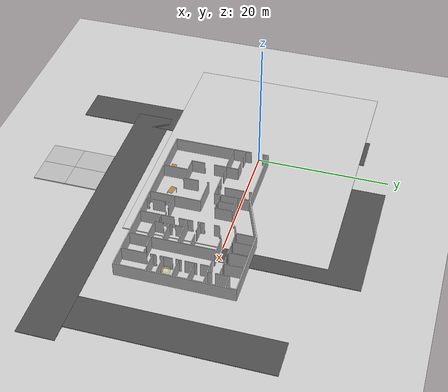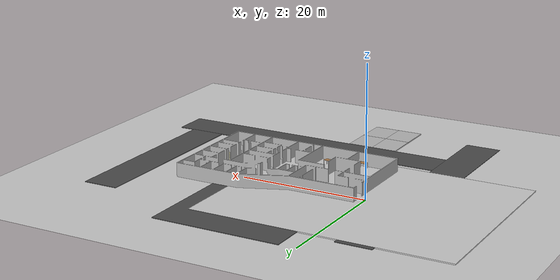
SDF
<sdf version="1.6">
 <world name="default">
  <light name="sun" type="directional">
   <pose>0 0 10 0 -0 0</pose>
   <diffuse>0.8 0.8 0.8 1</diffuse>
   <specular>0.1 0.1 0.1 1</specular>
   <attenuation>
    <range>1000</range>
    <constant>0.9</constant>
    <linear>0.01</linear>
    <quadratic>0.001</quadratic>
   </attenuation>
   <direction>-0.5 0.5 -1</direction>
  </light>
  <model name="ground_plane">
   <static>1</static>
   <link name="link">
    <collision name="collision">
     <geometry><plane><normal>0 0 1</normal><size>100 100</size></plane></geometry>
     <surface><friction><ode><mu>100</mu><mu2>50</mu2></ode></friction></surface>
    </collision>
    <visual name="visual">
     <cast_shadows>0</cast_shadows>
     <geometry><plane><normal>0 0 1</normal><size>100 100</size></plane></geometry>
     <material>
      <script><uri>file://media/materials/scripts/gazebo.material</uri><name>Gazebo/Grey</name></script>
     </material>
    </visual>
   </link>
  </model>
  <gravity>0 0 -9.8</gravity>
  <magnetic_field>6e-06 2.3e-05 -4.2e-05</magnetic_field>
  <atmosphere type="adiabatic"/>
  <physics name="default_physics" default="0" type="ode">
   <max_step_size>0.001</max_step_size>
   <real_time_factor>1</real_time_factor>
   <real_time_update_rate>1000</real_time_update_rate>
  </physics>
  <scene><ambient>0.6 0.6 0.6 1</ambient><background>0.8 0.79 0.77 1</background><shadows>1</shadows></scene>
  <spherical_coordinates>
   <surface_model>EARTH_WGS84</surface_model>
   <latitude_deg>0</latitude_deg>
   <longitude_deg>0</longitude_deg>
   <elevation>0</elevation>
   <heading_deg>0</heading_deg>
  </spherical_coordinates>
  <model name="my_building">
   <static>1</static>
   <link name="building">
    <collision name="collision">
     <geometry>
      <mesh><uri>model://ed_pmov/worlds/models/building/building.dae</uri><scale>1 1 1</scale></mesh>
     </geometry>
    </collision>
    <visual name="visual">
     <geometry>
      <mesh><uri>model://ed_pmov/worlds/models/building/building.dae</uri><scale>1 1 1</scale></mesh>
     </geometry>
    </visual>
   </link>
  </model>
  <model name="asphalt_plane">
   <static>1</static>
   <link name="link">
    <collision name="collision"><geometry><box><size>20 20 0.1</size></box></geometry></collision>
    <visual name="visual">
     <cast_shadows>0</cast_shadows>
     <geometry><box><size>20 20 0.1</size></box></geometry>
     <material>
      <script>
       <uri>model://asphalt_plane/materials/scripts</uri>
       <uri>model://asphalt_plane/materials/textures</uri>
       <name>vrc/asphalt</name>
      </script>
     </material>
    </visual>
   </link>
   <pose>12.6559 10.0509 0 0 -0 0</pose>
  </model>
  <model name="asphalt_plane_clone">
   <static>1</static>
   <link name="link">
    <collision name="collision"><geometry><box><size>45.7531 5.54181 0.1</size></box></geometry></collision>
    <visual name="visual">
     <cast_shadows>0</cast_shadows>
     <geometry><box><size>45.7531 5.54181 0.1</size></box></geometry>
     <material>
      <script>
       <uri>model://asphalt_plane/materials/scripts</uri>
       <uri>model://asphalt_plane/materials/textures</uri>
       <name>vrc/asphalt</name>
      </script>
     </material>
    </visual>
   </link>
   <pose>-6.02693 -7.16827 0 0 -0 1.56943</pose>
  </model>
  <model name="asphalt_plane_clone_0">
   <static>1</static>
   <link name="link">
    <collision name="collision"><geometry><box><size>48.0378 5.54182 0.1</size></box></geometry></collision>
    <visual name="visual">
     <cast_shadows>0</cast_shadows>
     <geometry><box><size>48.0378 5.54182 0.1</size></box></geometry>
     <material>
      <script>
       <uri>model://asphalt_plane/materials/scripts</uri>
       <uri>model://asphalt_plane/materials/textures</uri>
       <name>vrc/asphalt</name>
      </script>
     </material>
    </visual>
   </link>
   <pose>18.0057 -18.842 0 0 -0 0</pose>
  </model>
  <model name="asphalt_plane_clone_clone">
   <static>1</static>
   <link name="link">
    <collision name="collision"><geometry><box><size>28.9639 5.54181 0.1</size></box></geometry></collision>
    <visual name="visual">
     <cast_shadows>0</cast_shadows>
     <geometry><box><size>28.9639 5.54181 0.1</size></box></geometry>
     <material>
      <script>
       <uri>model://asphalt_plane/materials/scripts</uri>
       <uri>model://asphalt_plane/materials/textures</uri>
       <name>vrc/asphalt</name>
      </script>
     </material>
    </visual>
   </link>
   <pose>36.8104 -1.65568 0 0 -0 1.56943</pose>
  </model>
  <model name="mud_box">
   <static>1</static>
   <link name="link">
    <collision name="collision"><geometry><box><size>8 10 0.2</size></box></geometry></collision>
    <visual name="visual_1">
     <pose>-2 2.5 0 0 -0 0</pose>
     <cast_shadows>0</cast_shadows>
     <geometry><box><size>4 5 0.2</size></box></geometry>
     <material>
      <script>
       <uri>model://mud_box/materials/scripts</uri>
       <uri>model://mud_box/materials/textures</uri>
       <name>vrc/mud</name>
      </script>
     </material>
    </visual>
    <visual name="visual_2">
     <pose>2 2.5 0 0 -0 0</pose>
     <cast_shadows>0</cast_shadows>
     <geometry><box><size>4 5 0.2</size></box></geometry>
     <material>
      <script>
       <uri>model://mud_box/materials/scripts</uri>
       <uri>model://mud_box/materials/textures</uri>
       <name>vrc/mud</name>
      </script>
     </material>
    </visual>
    <visual name="visual_3">
     <pose>2 -2.5 0 0 -0 0</pose>
     <cast_shadows>0</cast_shadows>
     <geometry><box><size>4 5 0.2</size></box></geometry>
     <material>
      <script>
       <uri>model://mud_box/materials/scripts</uri>
       <uri>model://mud_box/materials/textures</uri>
       <name>vrc/mud</name>
      </script>
     </material>
    </visual>
    <visual name="visual_4">
     <pose>-2 -2.5 0 0 -0 0</pose>
     <cast_shadows>0</cast_shadows>
     <geometry><box><size>4 5 0.2</size></box></geometry>
     <material>
      <script>
       <uri>model://mud_box/materials/scripts</uri>
       <uri>model://mud_box/materials/textures</uri>
       <name>vrc/mud</name>
      </script>
     </material>
    </visual>
   </link>
   <pose>9.42611 -26.6417 0 0 -0 0</pose>
  </model>
  <model name="table">
   <static>0</static>
   <link name="link">
    <collision name="surface">
     <pose>0 0 1 0 -0 0</pose>
     <geometry><box><size>1.5 0.8 0.03</size></box></geometry>
     <surface><friction><ode><mu>0.6</mu><mu2>0.6</mu2></ode></friction></surface>
    </collision>
    <visual name="visual1">
     <pose>0 0 1 0 -0 0</pose>
     <geometry><box><size>1.4 0.8 0.04</size></box></geometry>
     <material>
      <script><uri>file://media/materials/scripts/gazebo.material</uri><name>Gazebo/Wood</name></script>
     </material>
    </visual>
    <collision name="front_left_leg">
     <pose>0.68 0.38 0.5 0 -0 0</pose>
     <geometry><cylinder><radius>0.02</radius><length>1</length></cylinder></geometry>
    </collision>
    <visual name="front_left_leg">
     <pose>0.68 0.38 0.5 0 -0 0</pose>
     <geometry><cylinder><radius>0.02</radius><length>1</length></cylinder></geometry>
     <material>
      <script><uri>file://media/materials/scripts/gazebo.material</uri><name>Gazebo/Grey</name></script>
     </material>
    </visual>
    <collision name="front_right_leg">
     <pose>0.68 -0.38 0.5 0 -0 0</pose>
     <geometry><cylinder><radius>0.02</radius><length>1</length></cylinder></geometry>
    </collision>
    <visual name="front_right_leg">
     <pose>0.68 -0.38 0.5 0 -0 0</pose>
     <geometry><cylinder><radius>0.02</radius><length>1</length></cylinder></geometry>
     <material>
      <script><uri>file://media/materials/scripts/gazebo.material</uri><name>Gazebo/Grey</name></script>
     </material>
    </visual>
    <collision name="back_right_leg">
     <pose>-0.68 -0.38 0.5 0 -0 0</pose>
     <geometry><cylinder><radius>0.02</radius><length>1</length></cylinder></geometry>
    </collision>
    <visual name="back_right_leg">
     <pose>-0.68 -0.38 0.5 0 -0 0</pose>
     <geometry><cylinder><radius>0.02</radius><length>1</length></cylinder></geometry>
     <material>
      <script><uri>file://media/materials/scripts/gazebo.material</uri><name>Gazebo/Grey</name></script>
     </material>
    </visual>
    <collision name="back_left_leg">
     <pose>-0.68 0.38 0.5 0 -0 0</pose>
     <geometry><cylinder><radius>0.02</radius><length>1</length></cylinder></geometry>
    </collision>
    <visual name="back_left_leg">
     <pose>-0.68 0.38 0.5 0 -0 0</pose>
     <geometry><cylinder><radius>0.02</radius><length>1</length></cylinder></geometry>
     <material>
      <script><uri>file://media/materials/scripts/gazebo.material</uri><name>Gazebo/Grey</name></script>
     </material>
    </visual>
    <inertial>
     <inertia><ixx>1</ixx><ixy>0</ixy><ixz>0</ixz><iyy>1</iyy><iyz>0</iyz><izz>1</izz></inertia>
     <mass>1</mass>
    </inertial>
   </link>
   <pose>6.3283 -11.8107 -9e-06 0 0 -0.028173</pose>
  </model>
  <model name="table_0">
   <static>0</static>
   <link name="link">
    <collision name="surface">
     <pose>0 0 1 0 -0 0</pose>
     <geometry><box><size>1.5 0.8 0.03</size></box></geometry>
     <surface><friction><ode><mu>0.6</mu><mu2>0.6</mu2></ode></friction></surface>
    </collision>
    <visual name="visual1">
     <pose>0 0 1 0 -0 0</pose>
     <geometry><box><size>1.4 0.8 0.04</size></box></geometry>
     <material>
      <script><uri>file://media/materials/scripts/gazebo.material</uri><name>Gazebo/Wood</name></script>
     </material>
    </visual>
    <collision name="front_left_leg">
     <pose>0.68 0.38 0.5 0 -0 0</pose>
     <geometry><cylinder><radius>0.02</radius><length>1</length></cylinder></geometry>
    </collision>
    <visual name="front_left_leg">
     <pose>0.68 0.38 0.5 0 -0 0</pose>
     <geometry><cylinder><radius>0.02</radius><length>1</length></cylinder></geometry>
     <material>
      <script><uri>file://media/materials/scripts/gazebo.material</uri><name>Gazebo/Grey</name></script>
     </material>
    </visual>
    <collision name="front_right_leg">
     <pose>0.68 -0.38 0.5 0 -0 0</pose>
     <geometry><cylinder><radius>0.02</radius><length>1</length></cylinder></geometry>
    </collision>
    <visual name="front_right_leg">
     <pose>0.68 -0.38 0.5 0 -0 0</pose>
     <geometry><cylinder><radius>0.02</radius><length>1</length></cylinder></geometry>
     <material>
      <script><uri>file://media/materials/scripts/gazebo.material</uri><name>Gazebo/Grey</name></script>
     </material>
    </visual>
    <collision name="back_right_leg">
     <pose>-0.68 -0.38 0.5 0 -0 0</pose>
     <geometry><cylinder><radius>0.02</radius><length>1</length></cylinder></geometry>
    </collision>
    <visual name="back_right_leg">
     <pose>-0.68 -0.38 0.5 0 -0 0</pose>
     <geometry><cylinder><radius>0.02</radius><length>1</length></cylinder></geometry>
     <material>
      <script><uri>file://media/materials/scripts/gazebo.material</uri><name>Gazebo/Grey</name></script>
     </material>
    </visual>
    <collision name="back_left_leg">
     <pose>-0.68 0.38 0.5 0 -0 0</pose>
     <geometry><cylinder><radius>0.02</radius><length>1</length></cylinder></geometry>
    </collision>
    <visual name="back_left_leg">
     <pose>-0.68 0.38 0.5 0 -0 0</pose>
     <geometry><cylinder><radius>0.02</radius><length>1</length></cylinder></geometry>
     <material>
      <script><uri>file://media/materials/scripts/gazebo.material</uri><name>Gazebo/Grey</name></script>
     </material>
    </visual>
    <inertial>
     <inertia><ixx>1</ixx><ixy>0</ixy><ixz>0</ixz><iyy>1</iyy><iyz>0</iyz><izz>1</izz></inertia>
     <mass>1</mass>
    </inertial>
   </link>
   <pose>11.285 -10.3948 -8e-06 1e-06 0 -0.161466</pose>
  </model>
  <model name="RegionEventBox">
   <static>1</static>
   <pose>26.7942 -6.19415 0 0 -0 0</pose>
   <link name="link">
    <visual name="visual">
     <transparency>0.75</transparency>
     <geometry><box><size>1 1 1.75</size></box></geometry>
     <material>
      <script><uri>file://media/materials/scripts/gazebo.material</uri><name>Gazebo/Yellow</name></script>
     </material>
    </visual>
   </link>
   <plugin name="region_event_box" filename="libRegionEventBoxPlugin.so">
    <event><name>model_in_region_event_box</name><type>inclusion</type><active>true</active></event>
   </plugin>
  </model>
  <model name="bookshelf">
   <static>1</static>
   <link name="link">
    <inertial><mass>1</mass></inertial>
    <collision name="back">
     <pose>0 0.005 0.6 0 -0 0</pose>
     <geometry><box><size>0.9 0.01 1.2</size></box></geometry>
    </collision>
   </link>
   <pose>14.9997 -8.28575 0 0 -0 0</pose>
  </model>
  <model name="woodenfloor">
   <link name="link">
    <collision name="collision">
     <geometry>
      <mesh><uri>model://ed_pmov/models/woodenfloor/woodenfloor.dae</uri><scale>1 1 1</scale></mesh>
     </geometry>
     <max_contacts>1</max_contacts>
    </collision>
    <visual name="visual">
     <geometry>
      <mesh><uri>model://ed_pmov/models/woodenfloor/woodenfloor.dae</uri><scale>1 1 1</scale></mesh>
     </geometry>
     <material>
      <script>
       <uri>model://ed_pmov/models/woodenfloor/materials/scripts</uri>
       <uri>model://ed_pmov/models/woodenfloor/materials/textures</uri>
       <name>woodenfloor/Diffuse</name>
      </script>
     </material>
    </visual>
    <inertial>
     <inertia><ixx>1</ixx><ixy>0</ixy><ixz>0</ixz><iyy>1</iyy><iyz>0</iyz><izz>1</izz></inertia>
     <mass>1</mass>
    </inertial>
   </link>
  </model>
 </world>
</sdf>
